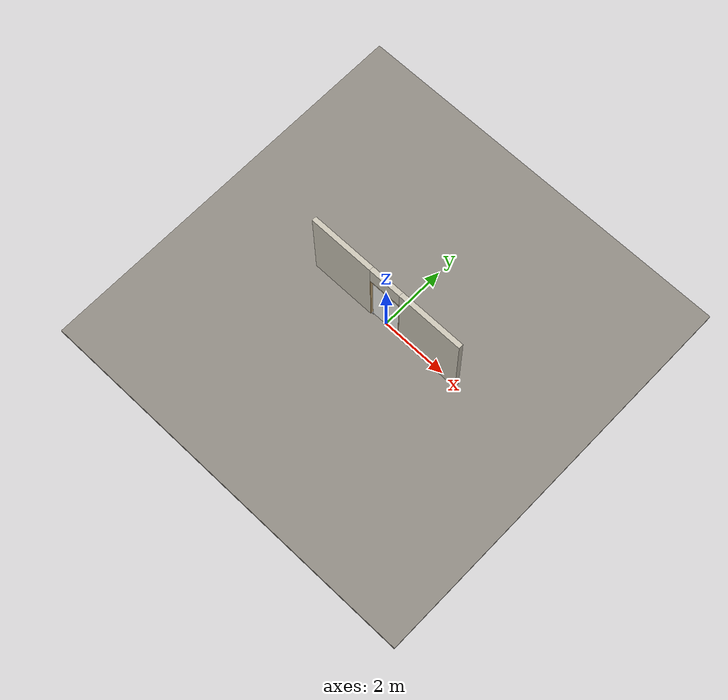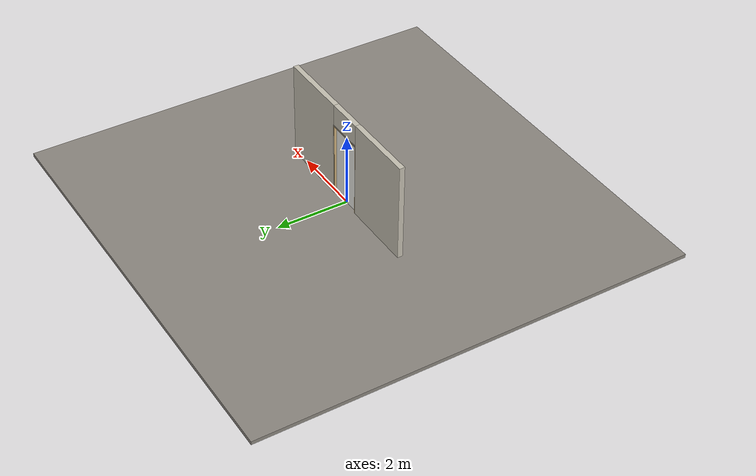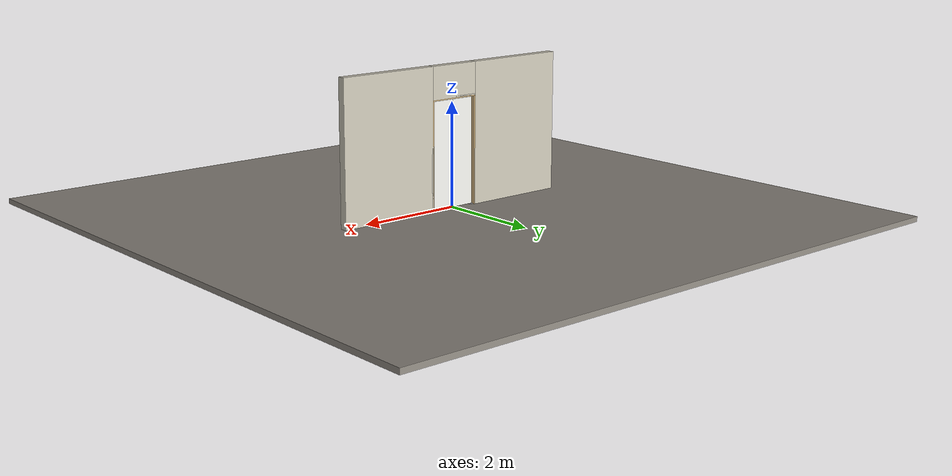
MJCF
<?xml version="1.0" ?>
<mujoco model="db0170_saloon_simple">
  <compiler angle="radian" meshdir="../../hardware" texturedir="../../textures" autolimits="true" inertiafromgeom="false"/>
  <option timestep="0.002" integrator="implicitfast" cone="elliptic" impratio="10" noslip_iterations="3">
    <flag multiccd="enable"/>
  </option>
  <size memory="16M"/>
  <default>
    <geom condim="4" solref="0.005 1" solimp="0.95 0.99 0.001"/>
    <joint solreflimit="0.005 1" solimplimit="0.95 0.99 0.001"/>
    <tendon solreflimit="0.005 1"/>
    <equality solref="0.002 1"/>
  </default>
  <visual>
    <headlight ambient="0.4 0.4 0.4" diffuse="0.7 0.7 0.7" specular="0.2 0.2 0.2"/>
    <quality shadowsize="4096"/>
    <map znear="0.01" zfar="60"/>
  </visual>
  <asset>
    <material name="mat_floor" rgba="0.55 0.53 0.5 1" specular="0.2" shininess="0.15" reflectance="0"/>
    <material name="mat_wall" rgba="0.78 0.76 0.7 1" specular="0.2" shininess="0.1" reflectance="0"/>
    <material name="mat_frame" rgba="0.82 0.7 0.5 1" specular="0.2" shininess="0.45" reflectance="0"/>
    <material name="mat_leaf_a" rgba="0.93 0.93 0.91 1" specular="0.2" shininess="0.32" reflectance="0"/>
    <material name="mat_leaf_a_louver" rgba="0.79 0.79 0.773 1" specular="0.2" shininess="0.4" reflectance="0"/>
    <material name="mat_hinge" rgba="0.65 0.66 0.68 1" specular="0.74" shininess="0.5" reflectance="0.36"/>
    <material name="mat_leaf_b" rgba="0.93 0.93 0.91 1" specular="0.2" shininess="0.32" reflectance="0"/>
    <material name="mat_leaf_b_louver" rgba="0.79 0.79 0.773 1" specular="0.2" shininess="0.4" reflectance="0"/>
    <texture name="skybox" type="skybox" builtin="gradient" rgb1="0.6 0.7 0.85" rgb2="0.9 0.92 0.95" width="256" height="256"/>
  </asset>
  <worldbody>
    <light name="sun" pos="1.5 -2.5 4" dir="-0.3 0.5 -0.8" directional="true" diffuse="0.8 0.8 0.8" specular="0.3 0.3 0.3" castshadow="true"/>
    <light name="fill" pos="-1.5 2.5 3" dir="0.3 -0.5 -0.7" directional="true" diffuse="0.35 0.35 0.4" castshadow="false"/>
    <camera name="robot_view" pos="0 -2.554375 1.744225" xyaxes="1 0 0 0 0.26963 0.962964" fovy="52"/>
    <camera name="far_view" pos="0 2.554375 1.744225" xyaxes="-1 0 0 0 -0.26963 0.962964" fovy="52"/>
    <camera name="iso" pos="1.941325 -2.145675 2.152925" xyaxes="0.741536 0.670913 0 -0.242917 0.268487 0.932151" fovy="46"/>
    <camera name="detail_handle" pos="0.48 -0.8 1.28" xyaxes="0.97561 0.219512 0 -0.070934 0.315262 0.94635" fovy="38"/>
    <geom name="floor" type="box" size="6 6 0.05" pos="0 0 -0.05" material="mat_floor" group="0" contype="1" conaffinity="1" friction="0.8 0.005 0.0001" density="2400"/>
    <geom name="wall_left" type="box" size="0.9985 0.0725 1.35" pos="-1.5015 0 1.35" material="mat_wall" group="0" contype="1" conaffinity="1" friction="0.6 0.005 0.0001" density="800"/>
    <geom name="wall_right" type="box" size="0.9985 0.0725 1.35" pos="1.5015 0 1.35" material="mat_wall" group="0" contype="1" conaffinity="1" friction="0.6 0.005 0.0001" density="800"/>
    <geom name="wall_header" type="box" size="0.503 0.0725 0.3115" pos="0 0 2.3885" material="mat_wall" group="0" contype="1" conaffinity="1" friction="0.6 0.005 0.0001" density="800"/>
    <geom name="jamb_hinge" type="box" size="0.0095 0.0725 1.029" pos="-0.4935 0 1.029" material="mat_frame" group="0" contype="1" conaffinity="1" friction="0.6 0.005 0.0001" density="400"/>
    <geom name="jamb_strike" type="box" size="0.0095 0.0725 1.029" pos="0.4935 0 1.029" material="mat_frame" group="0" contype="1" conaffinity="1" friction="0.6 0.005 0.0001" density="400"/>
    <geom name="stud_strike" type="box" size="0.015 0.0725 1.029" pos="0.518 0 1.029" material="mat_wall" group="0" contype="1" conaffinity="1" friction="0.6 0.005 0.0001" density="500"/>
    <geom name="jamb_head" type="box" size="0.518 0.0725 0.0095" pos="0.015 0 2.0675" material="mat_frame" group="0" contype="1" conaffinity="1" friction="0.6 0.005 0.0001" density="400"/>
    <geom name="head_stud" type="box" size="0.518 0.0725 0.015" pos="0.015 0 2.092" material="mat_wall" group="0" contype="1" conaffinity="1" friction="0.6 0.005 0.0001" density="500"/>
    <geom name="pivot_bottom_socket" type="box" size="0.035 0.035 0.0115" pos="-0.456 0 0.0015" material="mat_hinge" group="1" contype="0" conaffinity="0" density="7850"/>
    <geom name="pivot_top_bracket" type="box" size="0.035 0.035 0.0025" pos="-0.456 0 2.0555" material="mat_hinge" group="1" contype="0" conaffinity="0" density="7850"/>
    <geom name="pivot_bottom_socket_2" type="box" size="0.035 0.035 0.0115" pos="0.456 0 0.0015" material="mat_hinge" group="1" contype="0" conaffinity="0" density="7850"/>
    <geom name="pivot_top_bracket_2" type="box" size="0.035 0.035 0.0025" pos="0.456 0 2.0555" material="mat_hinge" group="1" contype="0" conaffinity="0" density="7850"/>
    <site name="approach_point" pos="0 -1.5 0" quat="1 0 0 0" size="0.05" rgba="0.2 0.9 0.2 0.5" group="4"/>
    <site name="goal_point" pos="0 1.5 0" quat="1 0 0 0" size="0.05" rgba="0.2 0.9 0.2 0.5" group="4"/>
    <site name="door_plane_center" pos="0 0 1.029" quat="1 0 0 0" size="0.02" rgba="0.2 0.9 0.2 0.5" group="4"/>
    <body name="leaf_a" pos="-0.484 0 0">
      <inertial pos="0.253 0 1.03" mass="9.11768" quat="-0.5 0.5 0.5 0.5" diaginertia="0.155331836 3.132558278 3.284948143"/>
      <joint name="leaf_a_hinge" type="hinge" axis="0 0 1" pos="0.028 0 0" limited="true" range="-1.570796 1.570796" damping="0.765034" frictionloss="0.209264" stiffness="4" springref="0" armature="0.02"/>
      <geom name="leaf_a_slab" type="box" size="0.225 0.022 1.015" pos="0.253 0 1.03" material="mat_leaf_a" group="0" contype="1" conaffinity="1" friction="0.35 0.005 0.0001" density="1"/>
      <site name="leaf_a_push_site" pos="0.3655 -0.022 1.233" quat="1 0 0 0" size="0.015" rgba="0.2 0.9 0.2 0.5" group="4"/>
    </body>
    <body name="leaf_b" pos="0.484 0 0">
      <inertial pos="-0.253 0 1.03" mass="9.11768" quat="-0.5 0.5 0.5 0.5" diaginertia="0.155331836 3.132558278 3.284948143"/>
      <joint name="leaf_b_hinge" type="hinge" axis="0 0 -1" pos="-0.028 0 0" limited="true" range="-1.570796 1.570796" damping="0.765034" frictionloss="0.209264" stiffness="4" springref="0" armature="0.02"/>
      <geom name="leaf_b_slab" type="box" size="0.225 0.022 1.015" pos="-0.253 0 1.03" material="mat_leaf_b" group="0" contype="1" conaffinity="1" friction="0.35 0.005 0.0001" density="1"/>
      <site name="leaf_b_push_site" pos="-0.3655 -0.022 1.233" quat="1 0 0 0" size="0.015" rgba="0.2 0.9 0.2 0.5" group="4"/>
    </body>
  </worldbody>
  <sensor>
    <jointpos name="leaf_a_hinge_pos" joint="leaf_a_hinge"/>
    <jointvel name="leaf_a_hinge_vel" joint="leaf_a_hinge"/>
    <jointpos name="leaf_b_hinge_pos" joint="leaf_b_hinge"/>
    <jointvel name="leaf_b_hinge_vel" joint="leaf_b_hinge"/>
  </sensor>
</mujoco>
